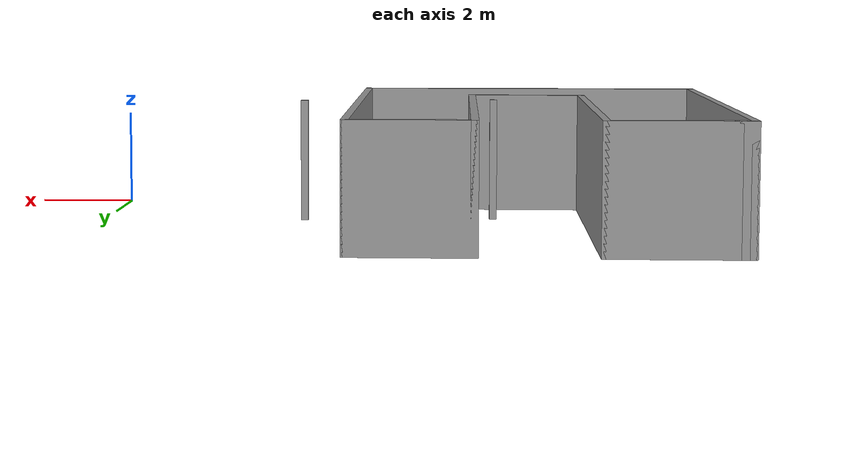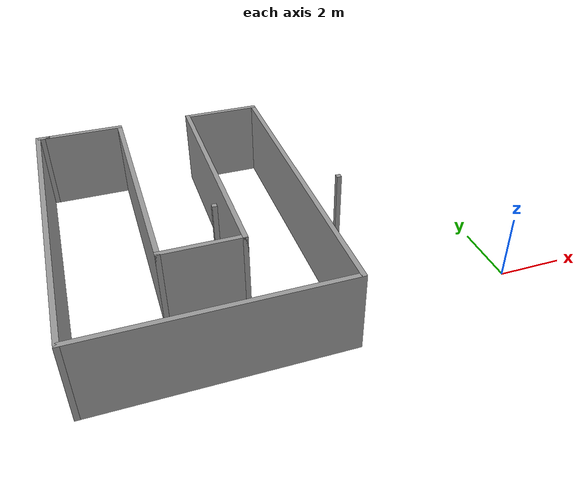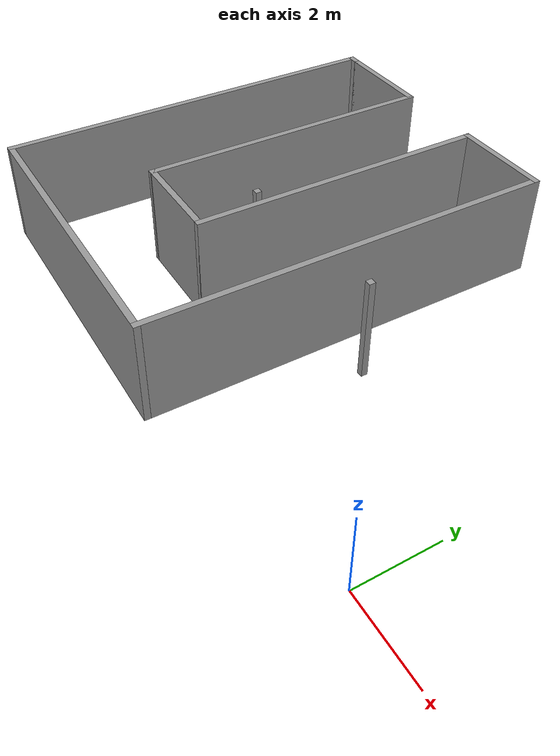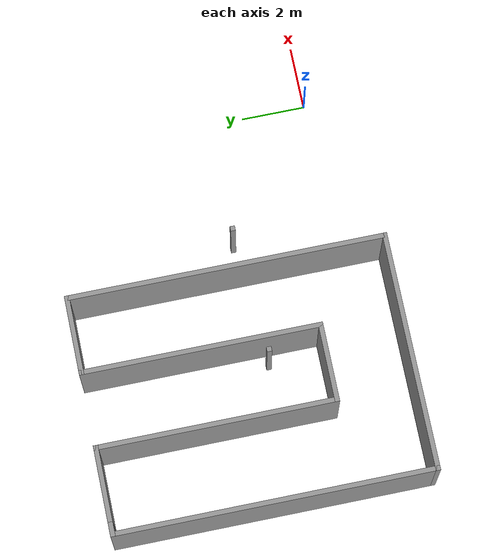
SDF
<?xml version='1.0'?>
<sdf version='1.6'>
  <model name='mybuilding'>
    <pose frame=''>-6.37462 3.58658 0 0 -0 0</pose>
    <link name='Wall_10'>
      <collision name='Wall_10_Collision'>
        <geometry>
          <box>
            <size>2.5 0.15 2.5</size>
          </box>
        </geometry>
        <pose frame=''>0 0 1.25 0 -0 0</pose>
      </collision>
      <visual name='Wall_10_Visual'>
        <pose frame=''>0 0 1.25 0 -0 0</pose>
        <geometry>
          <box>
            <size>2.5 0.15 2.5</size>
          </box>
        </geometry>
        <material>
          <script>
            <uri>file://media/materials/scripts/gazebo.material</uri>
            <name>Gazebo/Grey</name>
          </script>
          <ambient>1 1 1 1</ambient>
        </material>
        <meta>
          <layer>0</layer>
        </meta>
      </visual>
      <pose frame=''>-4.82462 4.925 0 0 -0 0</pose>
    </link>
    <link name='Wall_11'>
      <collision name='Wall_11_Collision'>
        <geometry>
          <box>
            <size>7.5 0.15 2.5</size>
          </box>
        </geometry>
        <pose frame=''>0 0 1.25 0 -0 0</pose>
      </collision>
      <visual name='Wall_11_Visual'>
        <pose frame=''>0 0 1.25 0 -0 0</pose>
        <geometry>
          <box>
            <size>7.5 0.15 2.5</size>
          </box>
        </geometry>
        <material>
          <script>
            <uri>file://media/materials/scripts/gazebo.material</uri>
            <name>Gazebo/Grey</name>
          </script>
          <ambient>1 1 1 1</ambient>
        </material>
        <meta>
          <layer>0</layer>
        </meta>
      </visual>
      <pose frame=''>-3.64962 1.25 0 0 -0 -1.5708</pose>
    </link>
    <link name='Wall_12'>
      <collision name='Wall_12_Collision'>
        <geometry>
          <box>
            <size>2.5 0.15 2.5</size>
          </box>
        </geometry>
        <pose frame=''>0 0 1.25 0 -0 0</pose>
      </collision>
      <visual name='Wall_12_Visual'>
        <pose frame=''>0 0 1.25 0 -0 0</pose>
        <geometry>
          <box>
            <size>2.5 0.15 2.5</size>
          </box>
        </geometry>
        <material>
          <script>
            <uri>file://media/materials/scripts/gazebo.material</uri>
            <name>Gazebo/Grey</name>
          </script>
          <ambient>1 1 1 1</ambient>
        </material>
        <meta>
          <layer>0</layer>
        </meta>
      </visual>
      <pose frame=''>-2.47462 -2.425 0 0 -0 0</pose>
    </link>
    <link name='Wall_13'>
      <collision name='Wall_13_Collision'>
        <geometry>
          <box>
            <size>7.5 0.15 2.5</size>
          </box>
        </geometry>
        <pose frame=''>0 0 1.25 0 -0 0</pose>
      </collision>
      <visual name='Wall_13_Visual'>
        <pose frame=''>0 0 1.25 0 -0 0</pose>
        <geometry>
          <box>
            <size>7.5 0.15 2.5</size>
          </box>
        </geometry>
        <material>
          <script>
            <uri>file://media/materials/scripts/gazebo.material</uri>
            <name>Gazebo/Grey</name>
          </script>
          <ambient>1 1 1 1</ambient>
        </material>
        <meta>
          <layer>0</layer>
        </meta>
      </visual>
      <pose frame=''>-1.29962 1.25 0 0 -0 1.5708</pose>
    </link>
    <link name='Wall_14'>
      <collision name='Wall_14_Collision'>
        <geometry>
          <box>
            <size>2.5 0.15 2.5</size>
          </box>
        </geometry>
        <pose frame=''>0 0 1.25 0 -0 0</pose>
      </collision>
      <visual name='Wall_14_Visual'>
        <pose frame=''>0 0 1.25 0 -0 0</pose>
        <geometry>
          <box>
            <size>2.5 0.15 2.5</size>
          </box>
        </geometry>
        <material>
          <script>
            <uri>file://media/materials/scripts/gazebo.material</uri>
            <name>Gazebo/Grey</name>
          </script>
          <ambient>1 1 1 1</ambient>
        </material>
        <meta>
          <layer>0</layer>
        </meta>
      </visual>
      <pose frame=''>-0.124619 4.925 0 0 -0 0</pose>
    </link>
    <link name='Wall_15'>
      <collision name='Wall_15_Collision'>
        <geometry>
          <box>
            <size>10 0.15 2.5</size>
          </box>
        </geometry>
        <pose frame=''>0 0 1.25 0 -0 0</pose>
      </collision>
      <visual name='Wall_15_Visual'>
        <pose frame=''>0 0 1.25 0 -0 0</pose>
        <geometry>
          <box>
            <size>10 0.15 2.5</size>
          </box>
        </geometry>
        <material>
          <script>
            <uri>file://media/materials/scripts/gazebo.material</uri>
            <name>Gazebo/Grey</name>
          </script>
          <ambient>1 1 1 1</ambient>
        </material>
        <meta>
          <layer>0</layer>
        </meta>
      </visual>
      <pose frame=''>1.05038 0 0 0 -0 -1.5708</pose>
    </link>
    <link name='Wall_16'>
      <collision name='Wall_16_Collision'>
        <geometry>
          <box>
            <size>7.5 0.15 2.5</size>
          </box>
        </geometry>
        <pose frame=''>0 0 1.25 0 -0 0</pose>
      </collision>
      <visual name='Wall_16_Visual'>
        <pose frame=''>0 0 1.25 0 -0 0</pose>
        <geometry>
          <box>
            <size>7.5 0.15 2.5</size>
          </box>
        </geometry>
        <material>
          <script>
            <uri>file://media/materials/scripts/gazebo.material</uri>
            <name>Gazebo/Grey</name>
          </script>
          <ambient>1 1 1 1</ambient>
        </material>
        <meta>
          <layer>0</layer>
        </meta>
      </visual>
      <pose frame=''>-2.62462 -4.925 0 0 -0 3.14159</pose>
    </link>
    <link name='Wall_17'>
      <collision name='Wall_17_Collision'>
        <geometry>
          <box>
            <size>10 0.15 2.5</size>
          </box>
        </geometry>
        <pose frame=''>0 0 1.25 0 -0 0</pose>
      </collision>
      <visual name='Wall_17_Visual'>
        <pose frame=''>0 0 1.25 0 -0 0</pose>
        <geometry>
          <box>
            <size>10 0.15 2.5</size>
          </box>
        </geometry>
        <material>
          <script>
            <uri>file://media/materials/scripts/gazebo.material</uri>
            <name>Gazebo/Grey</name>
          </script>
          <ambient>1 1 1 1</ambient>
        </material>
        <meta>
          <layer>0</layer>
        </meta>
      </visual>
      <pose frame=''>-6.29962 0 0 0 -0 1.5708</pose>
    </link>
    <link name='Wall_18'>
      <collision name='Wall_18_Collision'>
        <geometry>
          <box>
            <size>0.45 0.15 2.5</size>
          </box>
        </geometry>
        <pose frame=''>0 0 1.25 0 -0 0</pose>
      </collision>
      <visual name='Wall_18_Visual'>
        <pose frame=''>0 0 1.25 0 -0 0</pose>
        <geometry>
          <box>
            <size>0.45 0.15 2.5</size>
          </box>
        </geometry>
        <material>
          <script>
            <uri>file://media/materials/scripts/gazebo.material</uri>
            <name>Gazebo/Grey</name>
          </script>
          <ambient>1 1 1 1</ambient>
        </material>
        <meta>
          <layer>0</layer>
        </meta>
      </visual>
      <pose frame=''>-6.14962 4.925 0 0 -0 0</pose>
    </link>
    <link name='Wall_19'>
      <collision name='Wall_19_Collision'>
        <geometry>
          <box>
            <size>0.15 0.15 2.5</size>
          </box>
        </geometry>
        <pose frame=''>0 0 1.25 0 -0 0</pose>
      </collision>
      <visual name='Wall_19_Visual'>
        <pose frame=''>0 0 1.25 0 -0 0</pose>
        <geometry>
          <box>
            <size>0.15 0.15 2.5</size>
          </box>
        </geometry>
        <material>
          <script>
            <uri>file://media/materials/scripts/gazebo.material</uri>
            <name>Gazebo/Grey</name>
          </script>
          <ambient>1 1 1 1</ambient>
        </material>
        <meta>
          <layer>0</layer>
        </meta>
      </visual>
      <pose frame=''>-5.99962 4.925 0 0 -0 0</pose>
    </link>
    <link name='Wall_20'>
      <collision name='Wall_20_Collision'>
        <geometry>
          <box>
            <size>0.15 0.15 2.5</size>
          </box>
        </geometry>
        <pose frame=''>0 0 1.25 0 -0 0</pose>
      </collision>
      <visual name='Wall_20_Visual'>
        <pose frame=''>0 0 1.25 0 -0 0</pose>
        <geometry>
          <box>
            <size>0.15 0.15 2.5</size>
          </box>
        </geometry>
        <material>
          <script>
            <uri>file://media/materials/scripts/gazebo.material</uri>
            <name>Gazebo/Grey</name>
          </script>
          <ambient>1 1 1 1</ambient>
        </material>
        <meta>
          <layer>0</layer>
        </meta>
      </visual>
      <pose frame=''>-5.99962 4.925 0 0 -0 0</pose>
    </link>
    <link name='Wall_4'>
      <collision name='Wall_4_Collision'>
        <geometry>
          <box>
            <size>0.15 0.15 2.5</size>
          </box>
        </geometry>
        <pose frame=''>0 0 1.25 0 -0 0</pose>
      </collision>
      <visual name='Wall_4_Visual'>
        <pose frame=''>0 0 1.25 0 -0 0</pose>
        <geometry>
          <box>
            <size>0.15 0.15 2.5</size>
          </box>
        </geometry>
        <material>
          <script>
            <uri>file://media/materials/scripts/gazebo.material</uri>
            <name>Gazebo/Grey</name>
          </script>
          <ambient>1 1 1 1</ambient>
        </material>
        <meta>
          <layer>0</layer>
        </meta>
      </visual>
      <pose frame=''>2.19238 -0.428208 0 0 -0 0</pose>
    </link>
    <link name='Wall_8'>
      <collision name='Wall_8_Collision'>
        <geometry>
          <box>
            <size>0.15 0.15 2.5</size>
          </box>
        </geometry>
        <pose frame=''>0 0 1.25 0 -0 0</pose>
      </collision>
      <visual name='Wall_8_Visual'>
        <pose frame=''>0 0 1.25 0 -0 0</pose>
        <geometry>
          <box>
            <size>0.15 0.15 2.5</size>
          </box>
        </geometry>
        <material>
          <script>
            <uri>file://media/materials/scripts/gazebo.material</uri>
            <name>Gazebo/Grey</name>
          </script>
          <ambient>1 1 1 1</ambient>
        </material>
        <meta>
          <layer>0</layer>
        </meta>
      </visual>
      <pose frame=''>-1.73244 -0.74741 0 0 -0 0</pose>
    </link>
    <static>1</static>
  </model>
</sdf>
